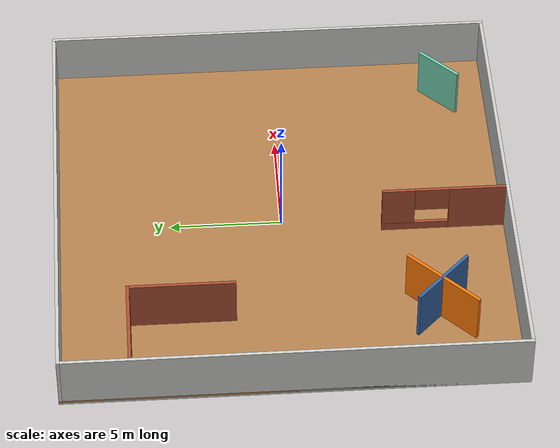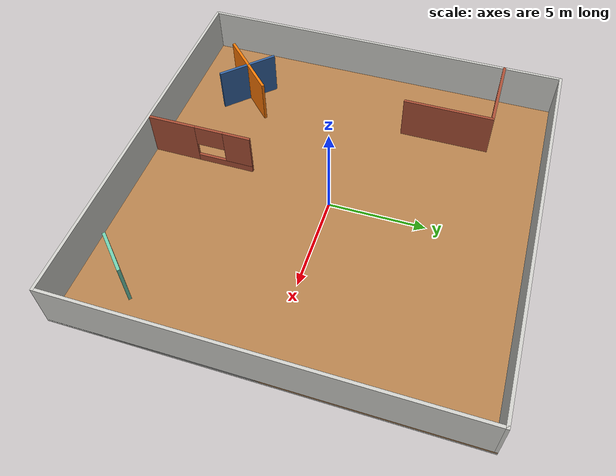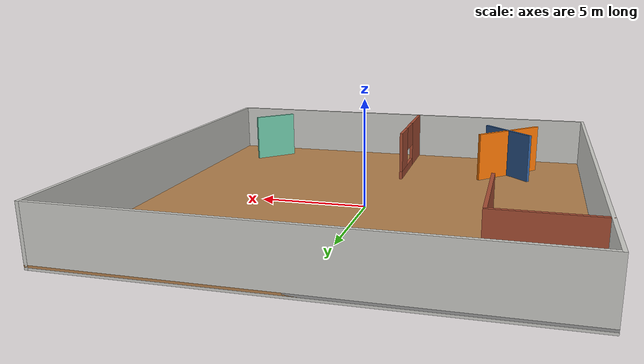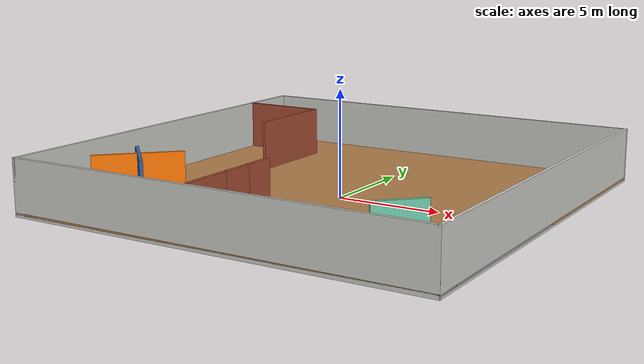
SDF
<?xml version='1.0'?>
<sdf version='1.7'>
  <model name='wall_room_2'>
    <pose>0 0 0 0 -0 0</pose>
    <link name='Floor_0'>
      <collision name='Floor_0_Collision'>
        <geometry>
          <box>
            <size>20.15 20.15 0.1</size>
          </box>
        </geometry>
        <pose>0 0 0.05 0 -0 0</pose>
      </collision>
      <visual name='Floor_0_Visual'>
        <pose>0 0 0.05 0 -0 0</pose>
        <geometry>
          <box>
            <size>20.15 20.15 0.1</size>
          </box>
        </geometry>
        <material>
          <script>
            <uri>file://media/materials/scripts/gazebo.material</uri>
            <name>Gazebo/Wood</name>
          </script>
          <ambient>1 1 1 1</ambient>
        </material>
        <meta>
          <layer>1</layer>
        </meta>
      </visual>
      <pose>0 0 0.1 0 -0 0</pose>
    </link>
    <link name='Wall_0'>
      <collision name='Wall_0_Collision'>
        <geometry>
          <box>
            <size>20.15 0.15 2.6</size>
          </box>
        </geometry>
        <pose>0 0 1.3 0 -0 0</pose>
      </collision>
      <visual name='Wall_0_Visual'>
        <pose>0 0 1.3 0 -0 0</pose>
        <geometry>
          <box>
            <size>20.15 0.15 2.6</size>
          </box>
        </geometry>
        <material>
          <script>
            <uri>file://media/materials/scripts/gazebo.material</uri>
            <name>Gazebo/CeilingTiled</name>
          </script>
          <ambient>1 1 1 1</ambient>
        </material>
        <meta>
          <layer>0</layer>
        </meta>
      </visual>
      <pose>-10 0 0 0 -0 -1.5708</pose>
    </link>
    <link name='Wall_1'>
      <collision name='Wall_1_Collision'>
        <geometry>
          <box>
            <size>20.15 0.15 2.6</size>
          </box>
        </geometry>
        <pose>0 0 1.3 0 -0 0</pose>
      </collision>
      <visual name='Wall_1_Visual'>
        <pose>0 0 1.3 0 -0 0</pose>
        <geometry>
          <box>
            <size>20.15 0.15 2.6</size>
          </box>
        </geometry>
        <material>
          <script>
            <uri>file://media/materials/scripts/gazebo.material</uri>
            <name>Gazebo/CeilingTiled</name>
          </script>
          <ambient>1 1 1 1</ambient>
        </material>
        <meta>
          <layer>0</layer>
        </meta>
      </visual>
      <pose>0 -10 0 0 -0 0</pose>
    </link>
    <link name='Wall_10'>
      <collision name='Wall_10_Collision'>
        <geometry>
          <box>
            <size>4.25 0.15 2.5</size>
          </box>
        </geometry>
        <pose>0 0 1.25 0 -0 0</pose>
      </collision>
      <visual name='Wall_10_Visual'>
        <pose>0 0 1.25 0 -0 0</pose>
        <geometry>
          <box>
            <size>4.25 0.15 2.5</size>
          </box>
        </geometry>
        <material>
          <script>
            <uri>file://media/materials/scripts/gazebo.material</uri>
            <name>Gazebo/Bricks</name>
          </script>
          <ambient>1 1 1 1</ambient>
        </material>
        <meta>
          <layer>1</layer>
        </meta>
      </visual>
      <pose>-7.93 6.98 0.1 0 -0 0</pose>
    </link>
    <link name='Wall_11'>
      <collision name='Wall_11_Collision'>
        <geometry>
          <box>
            <size>4.75 0.15 2.5</size>
          </box>
        </geometry>
        <pose>0 0 1.25 0 -0 0</pose>
      </collision>
      <visual name='Wall_11_Visual'>
        <pose>0 0 1.25 0 -0 0</pose>
        <geometry>
          <box>
            <size>4.75 0.15 2.5</size>
          </box>
        </geometry>
        <material>
          <script>
            <uri>file://media/materials/scripts/gazebo.material</uri>
            <name>Gazebo/Bricks</name>
          </script>
          <ambient>1 1 1 1</ambient>
        </material>
        <meta>
          <layer>1</layer>
        </meta>
      </visual>
      <pose>-5.88 4.68 0.1 0 -0 -1.5708</pose>
    </link>
    <link name='Wall_15'>
      <collision name='Wall_15_Collision'>
        <geometry>
          <box>
            <size>4 0.15 2.5</size>
          </box>
        </geometry>
        <pose>0 0 1.25 0 -0 0</pose>
      </collision>
      <visual name='Wall_15_Visual'>
        <pose>0 0 1.25 0 -0 0</pose>
        <geometry>
          <box>
            <size>4 0.15 2.5</size>
          </box>
        </geometry>
        <material>
          <script>
            <uri>file://media/materials/scripts/gazebo.material</uri>
            <name>Gazebo/Grey</name>
          </script>
          <ambient>0.996078 0.47451 0.0196078 1</ambient>
        </material>
        <meta>
          <layer>1</layer>
        </meta>
      </visual>
      <pose>-6.15882 -6.59882 0.1 0 -0 0.785398</pose>
    </link>
    <link name='Wall_18'>
      <collision name='Wall_18_Collision'>
        <geometry>
          <box>
            <size>3.25 0.15 2.5</size>
          </box>
        </geometry>
        <pose>0 0 1.25 0 -0 0</pose>
      </collision>
      <visual name='Wall_18_Visual'>
        <pose>0 0 1.25 0 -0 0</pose>
        <geometry>
          <box>
            <size>3.25 0.15 2.5</size>
          </box>
        </geometry>
        <material>
          <script>
            <uri>file://media/materials/scripts/gazebo.material</uri>
            <name>Gazebo/Grey</name>
          </script>
          <ambient>0.203922 0.396078 0.643137 1</ambient>
        </material>
        <meta>
          <layer>1</layer>
        </meta>
      </visual>
      <pose>-6.10398 -6.60602 0.1 0 -0 -0.785398</pose>
    </link>
    <link name='Wall_2'>
      <collision name='Wall_2_Collision'>
        <geometry>
          <box>
            <size>20.15 0.15 2.6</size>
          </box>
        </geometry>
        <pose>0 0 1.3 0 -0 0</pose>
      </collision>
      <visual name='Wall_2_Visual'>
        <pose>0 0 1.3 0 -0 0</pose>
        <geometry>
          <box>
            <size>20.15 0.15 2.6</size>
          </box>
        </geometry>
        <material>
          <script>
            <uri>file://media/materials/scripts/gazebo.material</uri>
            <name>Gazebo/CeilingTiled</name>
          </script>
          <ambient>1 1 1 1</ambient>
        </material>
        <meta>
          <layer>0</layer>
        </meta>
      </visual>
      <pose>10 0 0 0 -0 1.5708</pose>
    </link>
    <link name='Wall_20'>
      <pose>-0.84 -7.175 0.1 0 -0 1.5708</pose>
      <visual name='Wall_20_Visual_0'>
        <pose>-1.4925 0 1.25 0 -0 0</pose>
        <geometry>
          <box>
            <size>2.515 0.15 2.5</size>
          </box>
        </geometry>
        <material>
          <script>
            <uri>file://media/materials/scripts/gazebo.material</uri>
            <name>Gazebo/Bricks</name>
          </script>
          <ambient>1 1 1 1</ambient>
        </material>
        <meta>
          <layer>1</layer>
        </meta>
      </visual>
      <collision name='Wall_20_Collision_0'>
        <geometry>
          <box>
            <size>2.515 0.15 2.5</size>
          </box>
        </geometry>
        <pose>-1.4925 0 1.25 0 -0 0</pose>
      </collision>
      <visual name='Wall_20_Visual_1'>
        <pose>1.2575 0 0.25 0 -0 0</pose>
        <geometry>
          <box>
            <size>2.985 0.15 0.5</size>
          </box>
        </geometry>
        <material>
          <script>
            <uri>file://media/materials/scripts/gazebo.material</uri>
            <name>Gazebo/Bricks</name>
          </script>
          <ambient>1 1 1 1</ambient>
        </material>
        <meta>
          <layer>1</layer>
        </meta>
      </visual>
      <collision name='Wall_20_Collision_1'>
        <geometry>
          <box>
            <size>2.985 0.15 0.5</size>
          </box>
        </geometry>
        <pose>1.2575 0 0.25 0 -0 0</pose>
      </collision>
      <visual name='Wall_20_Visual_2'>
        <pose>2.0175 0 1.5 0 -0 0</pose>
        <geometry>
          <box>
            <size>1.465 0.15 2</size>
          </box>
        </geometry>
        <material>
          <script>
            <uri>file://media/materials/scripts/gazebo.material</uri>
            <name>Gazebo/Bricks</name>
          </script>
          <ambient>1 1 1 1</ambient>
        </material>
        <meta>
          <layer>1</layer>
        </meta>
      </visual>
      <collision name='Wall_20_Collision_2'>
        <geometry>
          <box>
            <size>1.465 0.15 2</size>
          </box>
        </geometry>
        <pose>2.0175 0 1.5 0 -0 0</pose>
      </collision>
      <visual name='Wall_20_Visual_3'>
        <pose>0.525 0 1.9 0 -0 0</pose>
        <geometry>
          <box>
            <size>1.52 0.15 1.2</size>
          </box>
        </geometry>
        <material>
          <script>
            <uri>file://media/materials/scripts/gazebo.material</uri>
            <name>Gazebo/Bricks</name>
          </script>
          <ambient>1 1 1 1</ambient>
        </material>
        <meta>
          <layer>1</layer>
        </meta>
      </visual>
      <collision name='Wall_20_Collision_3'>
        <geometry>
          <box>
            <size>1.52 0.15 1.2</size>
          </box>
        </geometry>
        <pose>0.525 0 1.9 0 -0 0</pose>
      </collision>
    </link>
    <link name='Wall_22'>
      <collision name='Wall_22_Collision'>
        <geometry>
          <box>
            <size>2.25 0.15 2.5</size>
          </box>
        </geometry>
        <pose>0 0 1.25 0 -0 0</pose>
      </collision>
      <visual name='Wall_22_Visual'>
        <pose>0 0 1.25 0 -0 0</pose>
        <geometry>
          <box>
            <size>2.25 0.15 2.5</size>
          </box>
        </geometry>
        <material>
          <script>
            <uri>file://media/materials/scripts/gazebo.material</uri>
            <name>Gazebo/Grey</name>
          </script>
          <ambient>0.435294 0.796078 0.67451 1</ambient>
        </material>
        <meta>
          <layer>1</layer>
        </meta>
      </visual>
      <pose>7.28754 -7.76246 0.1 0 -0 -2.35619</pose>
    </link>
    <link name='Wall_3'>
      <collision name='Wall_3_Collision'>
        <geometry>
          <box>
            <size>20.15 0.15 2.6</size>
          </box>
        </geometry>
        <pose>0 0 1.3 0 -0 0</pose>
      </collision>
      <visual name='Wall_3_Visual'>
        <pose>0 0 1.3 0 -0 0</pose>
        <geometry>
          <box>
            <size>20.15 0.15 2.6</size>
          </box>
        </geometry>
        <material>
          <script>
            <uri>file://media/materials/scripts/gazebo.material</uri>
            <name>Gazebo/CeilingTiled</name>
          </script>
          <ambient>1 1 1 1</ambient>
        </material>
        <meta>
          <layer>0</layer>
        </meta>
      </visual>
      <pose>0 10 0 0 -0 3.14159</pose>
    </link>
    <link name='Wall_5'>
      <collision name='Wall_5_Collision'>
        <geometry>
          <box>
            <size>20.15 0.15 0.1</size>
          </box>
        </geometry>
        <pose>0 0 0.05 0 -0 0</pose>
      </collision>
      <visual name='Wall_5_Visual'>
        <pose>0 0 0.05 0 -0 0</pose>
        <geometry>
          <box>
            <size>20.15 0.15 0.1</size>
          </box>
        </geometry>
        <material>
          <script>
            <uri>file://media/materials/scripts/gazebo.material</uri>
            <name>Gazebo/Grey</name>
          </script>
          <ambient>1 1 1 1</ambient>
        </material>
        <meta>
          <layer>1</layer>
        </meta>
      </visual>
      <pose>-10 0 0.1 0 -0 -1.5708</pose>
    </link>
    <link name='Wall_6'>
      <collision name='Wall_6_Collision'>
        <geometry>
          <box>
            <size>20.15 0.15 0.1</size>
          </box>
        </geometry>
        <pose>0 0 0.05 0 -0 0</pose>
      </collision>
      <visual name='Wall_6_Visual'>
        <pose>0 0 0.05 0 -0 0</pose>
        <geometry>
          <box>
            <size>20.15 0.15 0.1</size>
          </box>
        </geometry>
        <material>
          <script>
            <uri>file://media/materials/scripts/gazebo.material</uri>
            <name>Gazebo/Grey</name>
          </script>
          <ambient>1 1 1 1</ambient>
        </material>
        <meta>
          <layer>1</layer>
        </meta>
      </visual>
      <pose>0 -10 0.1 0 -0 0</pose>
    </link>
    <link name='Wall_7'>
      <pose>10 0 0.1 0 -0 1.5708</pose>
      <visual name='Wall_7_Visual_0'>
        <pose>-2.8125 0 0.05 0 -0 0</pose>
        <geometry>
          <box>
            <size>14.525 0.15 0.1</size>
          </box>
        </geometry>
        <material>
          <script>
            <uri>file://media/materials/scripts/gazebo.material</uri>
            <name>Gazebo/Grey</name>
          </script>
          <ambient>1 1 1 1</ambient>
        </material>
        <meta>
          <layer>1</layer>
        </meta>
      </visual>
      <collision name='Wall_7_Collision_0'>
        <geometry>
          <box>
            <size>14.525 0.15 0.1</size>
          </box>
        </geometry>
        <pose>-2.8125 0 0.05 0 -0 0</pose>
      </collision>
      <visual name='Wall_7_Visual_1'>
        <pose>8.2425 0 0.05 0 -0 0</pose>
        <geometry>
          <box>
            <size>3.665 0.15 0.1</size>
          </box>
        </geometry>
        <material>
          <script>
            <uri>file://media/materials/scripts/gazebo.material</uri>
            <name>Gazebo/Grey</name>
          </script>
          <ambient>1 1 1 1</ambient>
        </material>
        <meta>
          <layer>1</layer>
        </meta>
      </visual>
      <collision name='Wall_7_Collision_1'>
        <geometry>
          <box>
            <size>3.665 0.15 0.1</size>
          </box>
        </geometry>
        <pose>8.2425 0 0.05 0 -0 0</pose>
      </collision>
    </link>
    <link name='Wall_8'>
      <collision name='Wall_8_Collision'>
        <geometry>
          <box>
            <size>20.15 0.15 0.1</size>
          </box>
        </geometry>
        <pose>0 0 0.05 0 -0 0</pose>
      </collision>
      <visual name='Wall_8_Visual'>
        <pose>0 0 0.05 0 -0 0</pose>
        <geometry>
          <box>
            <size>20.15 0.15 0.1</size>
          </box>
        </geometry>
        <material>
          <script>
            <uri>file://media/materials/scripts/gazebo.material</uri>
            <name>Gazebo/Grey</name>
          </script>
          <ambient>1 1 1 1</ambient>
        </material>
        <meta>
          <layer>1</layer>
        </meta>
      </visual>
      <pose>0 10 0.1 0 -0 3.14159</pose>
    </link>
    <static>1</static>
  </model>
</sdf>
